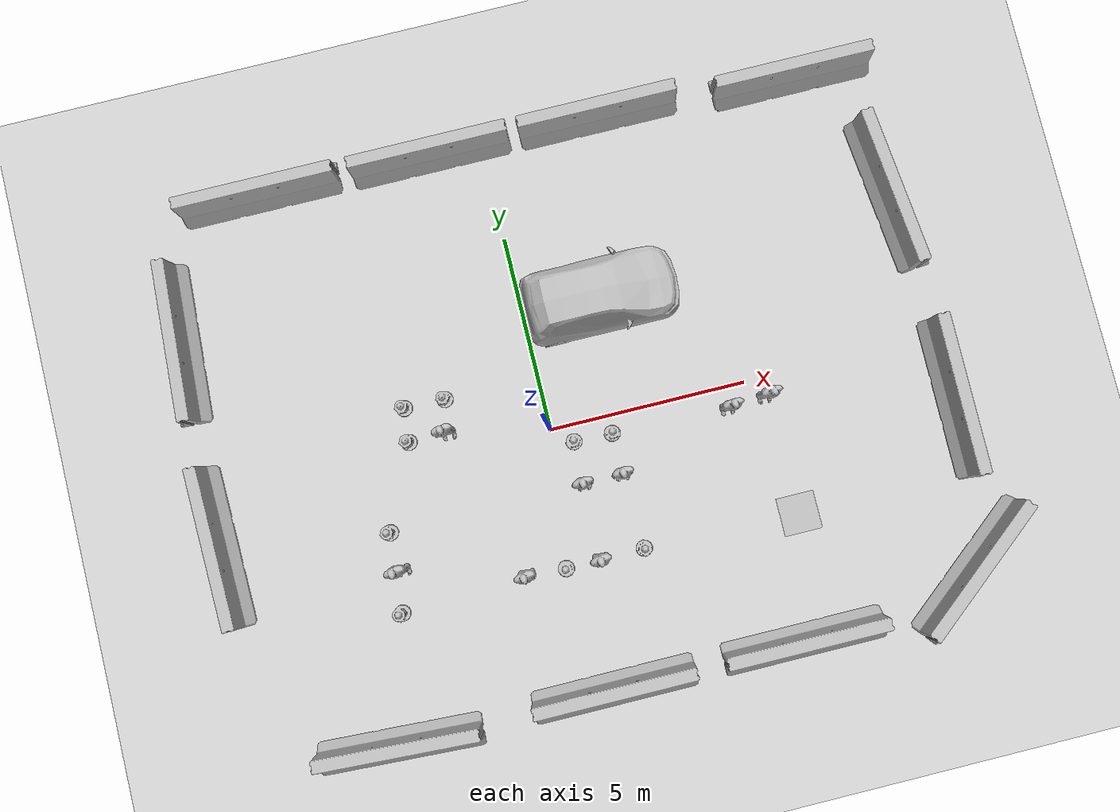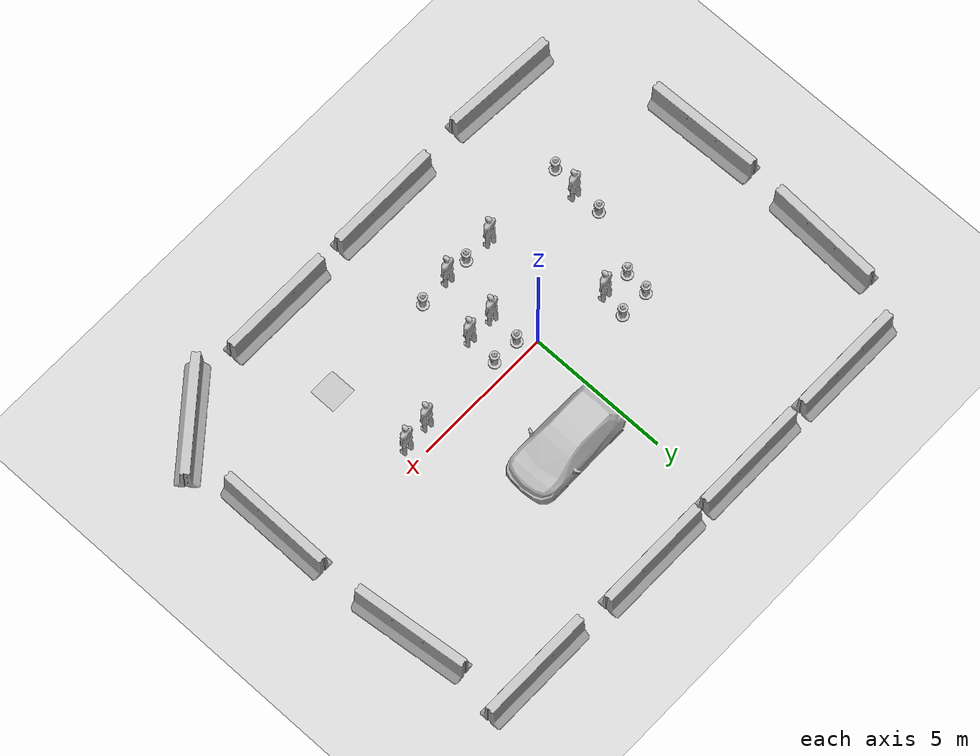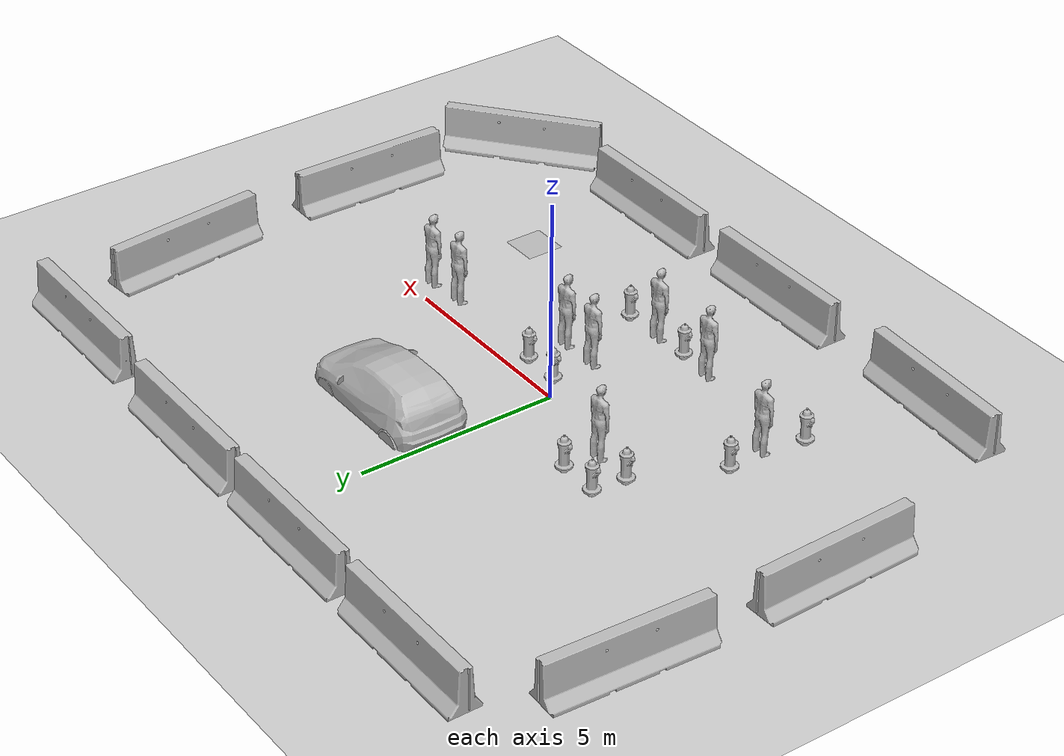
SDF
<sdf version="1.7">
 <world name="default">
  <light name="sun" type="directional">
   <pose>0 0 10 0 -0 0</pose>
   <diffuse>0.8 0.8 0.8 1</diffuse>
   <specular>0.2 0.2 0.2 1</specular>
   <attenuation>
    <range>1000</range>
    <constant>0.9</constant>
    <linear>0.01</linear>
    <quadratic>0.001</quadratic>
   </attenuation>
   <direction>-0.5 0.1 -0.9</direction>
   <spot><inner_angle>0</inner_angle><outer_angle>0</outer_angle><falloff>0</falloff></spot>
  </light>
  <model name="ground_plane">
   <static>1</static>
   <link name="link">
    <collision name="collision">
     <geometry><plane><normal>0 0 1</normal><size>100 100</size></plane></geometry>
     <surface>
      <contact><collide_bitmask>65535</collide_bitmask></contact>
      <friction><ode><mu>100</mu><mu2>50</mu2></ode></friction>
     </surface>
    </collision>
    <visual name="visual">
     <cast_shadows>0</cast_shadows>
     <geometry><plane><normal>0 0 1</normal><size>100 100</size></plane></geometry>
     <material>
      <script><uri>file://media/materials/scripts/gazebo.material</uri><name>Gazebo/Grey</name></script>
     </material>
    </visual>
   </link>
  </model>
  <gravity>0 0 -9.8</gravity>
  <magnetic_field>6e-06 2.3e-05 -4.2e-05</magnetic_field>
  <atmosphere type="adiabatic"/>
  <physics name="default_physics" default="0" type="ode">
   <max_step_size>0.001</max_step_size>
   <real_time_factor>1</real_time_factor>
   <real_time_update_rate>1000</real_time_update_rate>
  </physics>
  <scene><ambient>0.4 0.4 0.4 1</ambient><background>0.7 0.7 0.7 1</background><shadows>1</shadows></scene>
  <audio><device>default</device></audio>
  <spherical_coordinates>
   <surface_model>EARTH_WGS84</surface_model>
   <latitude_deg>0</latitude_deg>
   <longitude_deg>0</longitude_deg>
   <elevation>0</elevation>
   <heading_deg>0</heading_deg>
  </spherical_coordinates>
  <model name="checkerboard_plane">
   <static>1</static>
   <link name="link">
    <visual name="visual">
     <geometry>
      <mesh><scale>0.48 0.48 0.48</scale><uri>model://checkerboard_plane/meshes/checkerboard_plane.dae</uri></mesh>
     </geometry>
    </visual>
   </link>
   <pose>5.51191 -3.50404 0.005577 0 -0 0</pose>
  </model>
  <model name="jersey_barrier">
   <static>1</static>
   <link name="link">
    <visual name="visual">
     <geometry><mesh><uri>model://jersey_barrier/meshes/jersey_barrier.dae</uri></mesh></geometry>
    </visual>
    <collision name="upright">
     <pose>0 0 0.5715 0 -0 0</pose>
     <geometry><box><size>4.06542 0.3063 1.143</size></box></geometry>
    </collision>
    <collision name="base">
     <pose>0 0 0.032258 0 -0 0</pose>
     <geometry><box><size>4.06542 0.8107 0.064516</size></box></geometry>
    </collision>
    <collision name="base2">
     <pose>0 0 0.1 0 -0 0</pose>
     <geometry><box><size>4.06542 0.65 0.1</size></box></geometry>
    </collision>
    <collision name="base3">
     <pose>0 0 0.2 0 -0 0</pose>
     <geometry><box><size>4.06542 0.5 0.1</size></box></geometry>
    </collision>
    <collision name="left-angle">
     <pose>0 -0.224 0.2401 0.9 -0 0</pose>
     <geometry><box><size>4.06542 0.5 0.064516</size></box></geometry>
    </collision>
    <collision name="right-angle">
     <pose>0 0.224 0.2401 -0.9 0 0</pose>
     <geometry><box><size>4.06542 0.5 0.064516</size></box></geometry>
    </collision>
   </link>
   <pose>-5.72074 7.57191 0 0 -0 0</pose>
  </model>
  <model name="jersey_barrier_0">
   <static>1</static>
   <link name="link">
    <visual name="visual">
     <geometry><mesh><uri>model://jersey_barrier/meshes/jersey_barrier.dae</uri></mesh></geometry>
    </visual>
    <collision name="upright">
     <pose>0 0 0.5715 0 -0 0</pose>
     <geometry><box><size>4.06542 0.3063 1.143</size></box></geometry>
    </collision>
    <collision name="base">
     <pose>0 0 0.032258 0 -0 0</pose>
     <geometry><box><size>4.06542 0.8107 0.064516</size></box></geometry>
    </collision>
    <collision name="base2">
     <pose>0 0 0.1 0 -0 0</pose>
     <geometry><box><size>4.06542 0.65 0.1</size></box></geometry>
    </collision>
    <collision name="base3">
     <pose>0 0 0.2 0 -0 0</pose>
     <geometry><box><size>4.06542 0.5 0.1</size></box></geometry>
    </collision>
    <collision name="left-angle">
     <pose>0 -0.224 0.2401 0.9 -0 0</pose>
     <geometry><box><size>4.06542 0.5 0.064516</size></box></geometry>
    </collision>
    <collision name="right-angle">
     <pose>0 0.224 0.2401 -0.9 0 0</pose>
     <geometry><box><size>4.06542 0.5 0.064516</size></box></geometry>
    </collision>
   </link>
   <pose>-1.30679 7.54369 0 0 -0 0</pose>
  </model>
  <model name="jersey_barrier_1">
   <static>1</static>
   <link name="link">
    <visual name="visual">
     <geometry><mesh><uri>model://jersey_barrier/meshes/jersey_barrier.dae</uri></mesh></geometry>
    </visual>
    <collision name="upright">
     <pose>0 0 0.5715 0 -0 0</pose>
     <geometry><box><size>4.06542 0.3063 1.143</size></box></geometry>
    </collision>
    <collision name="base">
     <pose>0 0 0.032258 0 -0 0</pose>
     <geometry><box><size>4.06542 0.8107 0.064516</size></box></geometry>
    </collision>
    <collision name="base2">
     <pose>0 0 0.1 0 -0 0</pose>
     <geometry><box><size>4.06542 0.65 0.1</size></box></geometry>
    </collision>
    <collision name="base3">
     <pose>0 0 0.2 0 -0 0</pose>
     <geometry><box><size>4.06542 0.5 0.1</size></box></geometry>
    </collision>
    <collision name="left-angle">
     <pose>0 -0.224 0.2401 0.9 -0 0</pose>
     <geometry><box><size>4.06542 0.5 0.064516</size></box></geometry>
    </collision>
    <collision name="right-angle">
     <pose>0 0.224 0.2401 -0.9 0 0</pose>
     <geometry><box><size>4.06542 0.5 0.064516</size></box></geometry>
    </collision>
   </link>
   <pose>3.03202 7.53417 0 0 -0 0</pose>
  </model>
  <model name="jersey_barrier_2">
   <static>1</static>
   <link name="link">
    <visual name="visual">
     <geometry><mesh><uri>model://jersey_barrier/meshes/jersey_barrier.dae</uri></mesh></geometry>
    </visual>
    <collision name="upright">
     <pose>0 0 0.5715 0 -0 0</pose>
     <geometry><box><size>4.06542 0.3063 1.143</size></box></geometry>
    </collision>
    <collision name="base">
     <pose>0 0 0.032258 0 -0 0</pose>
     <geometry><box><size>4.06542 0.8107 0.064516</size></box></geometry>
    </collision>
    <collision name="base2">
     <pose>0 0 0.1 0 -0 0</pose>
     <geometry><box><size>4.06542 0.65 0.1</size></box></geometry>
    </collision>
    <collision name="base3">
     <pose>0 0 0.2 0 -0 0</pose>
     <geometry><box><size>4.06542 0.5 0.1</size></box></geometry>
    </collision>
    <collision name="left-angle">
     <pose>0 -0.224 0.2401 0.9 -0 0</pose>
     <geometry><box><size>4.06542 0.5 0.064516</size></box></geometry>
    </collision>
    <collision name="right-angle">
     <pose>0 0.224 0.2401 -0.9 0 0</pose>
     <geometry><box><size>4.06542 0.5 0.064516</size></box></geometry>
    </collision>
   </link>
   <pose>-5.34317 -6.59002 0 0 0 -0.053366</pose>
  </model>
  <model name="jersey_barrier_3">
   <static>1</static>
   <link name="link">
    <visual name="visual">
     <geometry><mesh><uri>model://jersey_barrier/meshes/jersey_barrier.dae</uri></mesh></geometry>
    </visual>
    <collision name="upright">
     <pose>0 0 0.5715 0 -0 0</pose>
     <geometry><box><size>4.06542 0.3063 1.143</size></box></geometry>
    </collision>
    <collision name="base">
     <pose>0 0 0.032258 0 -0 0</pose>
     <geometry><box><size>4.06542 0.8107 0.064516</size></box></geometry>
    </collision>
    <collision name="base2">
     <pose>0 0 0.1 0 -0 0</pose>
     <geometry><box><size>4.06542 0.65 0.1</size></box></geometry>
    </collision>
    <collision name="base3">
     <pose>0 0 0.2 0 -0 0</pose>
     <geometry><box><size>4.06542 0.5 0.1</size></box></geometry>
    </collision>
    <collision name="left-angle">
     <pose>0 -0.224 0.2401 0.9 -0 0</pose>
     <geometry><box><size>4.06542 0.5 0.064516</size></box></geometry>
    </collision>
    <collision name="right-angle">
     <pose>0 0.224 0.2401 -0.9 0 0</pose>
     <geometry><box><size>4.06542 0.5 0.064516</size></box></geometry>
    </collision>
   </link>
   <pose>0.017939 -6.55575 0 0 -0 0</pose>
  </model>
  <model name="jersey_barrier_4">
   <static>1</static>
   <link name="link">
    <visual name="visual">
     <geometry><mesh><uri>model://jersey_barrier/meshes/jersey_barrier.dae</uri></mesh></geometry>
    </visual>
    <collision name="upright">
     <pose>0 0 0.5715 0 -0 0</pose>
     <geometry><box><size>4.06542 0.3063 1.143</size></box></geometry>
    </collision>
    <collision name="base">
     <pose>0 0 0.032258 0 -0 0</pose>
     <geometry><box><size>4.06542 0.8107 0.064516</size></box></geometry>
    </collision>
    <collision name="base2">
     <pose>0 0 0.1 0 -0 0</pose>
     <geometry><box><size>4.06542 0.65 0.1</size></box></geometry>
    </collision>
    <collision name="base3">
     <pose>0 0 0.2 0 -0 0</pose>
     <geometry><box><size>4.06542 0.5 0.1</size></box></geometry>
    </collision>
    <collision name="left-angle">
     <pose>0 -0.224 0.2401 0.9 -0 0</pose>
     <geometry><box><size>4.06542 0.5 0.064516</size></box></geometry>
    </collision>
    <collision name="right-angle">
     <pose>0 0.224 0.2401 -0.9 0 0</pose>
     <geometry><box><size>4.06542 0.5 0.064516</size></box></geometry>
    </collision>
   </link>
   <pose>4.80899 -6.53465 0 0 -0 0</pose>
  </model>
  <model name="jersey_barrier_5">
   <static>1</static>
   <link name="link">
    <visual name="visual">
     <geometry><mesh><uri>model://jersey_barrier/meshes/jersey_barrier.dae</uri></mesh></geometry>
    </visual>
    <collision name="upright">
     <pose>0 0 0.5715 0 -0 0</pose>
     <geometry><box><size>4.06542 0.3063 1.143</size></box></geometry>
    </collision>
    <collision name="base">
     <pose>0 0 0.032258 0 -0 0</pose>
     <geometry><box><size>4.06542 0.8107 0.064516</size></box></geometry>
    </collision>
    <collision name="base2">
     <pose>0 0 0.1 0 -0 0</pose>
     <geometry><box><size>4.06542 0.65 0.1</size></box></geometry>
    </collision>
    <collision name="base3">
     <pose>0 0 0.2 0 -0 0</pose>
     <geometry><box><size>4.06542 0.5 0.1</size></box></geometry>
    </collision>
    <collision name="left-angle">
     <pose>0 -0.224 0.2401 0.9 -0 0</pose>
     <geometry><box><size>4.06542 0.5 0.064516</size></box></geometry>
    </collision>
    <collision name="right-angle">
     <pose>0 0.224 0.2401 -0.9 0 0</pose>
     <geometry><box><size>4.06542 0.5 0.064516</size></box></geometry>
    </collision>
   </link>
   <pose>-8.46202 4.27782 0 0 -0 1.51771</pose>
  </model>
  <model name="jersey_barrier_6">
   <static>1</static>
   <link name="link">
    <visual name="visual">
     <geometry><mesh><uri>model://jersey_barrier/meshes/jersey_barrier.dae</uri></mesh></geometry>
    </visual>
    <collision name="upright">
     <pose>0 0 0.5715 0 -0 0</pose>
     <geometry><box><size>4.06542 0.3063 1.143</size></box></geometry>
    </collision>
    <collision name="base">
     <pose>0 0 0.032258 0 -0 0</pose>
     <geometry><box><size>4.06542 0.8107 0.064516</size></box></geometry>
    </collision>
    <collision name="base2">
     <pose>0 0 0.1 0 -0 0</pose>
     <geometry><box><size>4.06542 0.65 0.1</size></box></geometry>
    </collision>
    <collision name="base3">
     <pose>0 0 0.2 0 -0 0</pose>
     <geometry><box><size>4.06542 0.5 0.1</size></box></geometry>
    </collision>
    <collision name="left-angle">
     <pose>0 -0.224 0.2401 0.9 -0 0</pose>
     <geometry><box><size>4.06542 0.5 0.064516</size></box></geometry>
    </collision>
    <collision name="right-angle">
     <pose>0 0.224 0.2401 -0.9 0 0</pose>
     <geometry><box><size>4.06542 0.5 0.064516</size></box></geometry>
    </collision>
   </link>
   <pose>-8.6215 -0.89399 0 0 0 -1.54764</pose>
  </model>
  <model name="jersey_barrier_7">
   <static>1</static>
   <link name="link">
    <visual name="visual">
     <geometry><mesh><uri>model://jersey_barrier/meshes/jersey_barrier.dae</uri></mesh></geometry>
    </visual>
    <collision name="upright">
     <pose>0 0 0.5715 0 -0 0</pose>
     <geometry><box><size>4.06542 0.3063 1.143</size></box></geometry>
    </collision>
    <collision name="base">
     <pose>0 0 0.032258 0 -0 0</pose>
     <geometry><box><size>4.06542 0.8107 0.064516</size></box></geometry>
    </collision>
    <collision name="base2">
     <pose>0 0 0.1 0 -0 0</pose>
     <geometry><box><size>4.06542 0.65 0.1</size></box></geometry>
    </collision>
    <collision name="base3">
     <pose>0 0 0.2 0 -0 0</pose>
     <geometry><box><size>4.06542 0.5 0.1</size></box></geometry>
    </collision>
    <collision name="left-angle">
     <pose>0 -0.224 0.2401 0.9 -0 0</pose>
     <geometry><box><size>4.06542 0.5 0.064516</size></box></geometry>
    </collision>
    <collision name="right-angle">
     <pose>0 0.224 0.2401 -0.9 0 0</pose>
     <geometry><box><size>4.06542 0.5 0.064516</size></box></geometry>
    </collision>
   </link>
   <pose>9.70575 3.77214 0 0 -0 1.6752</pose>
  </model>
  <model name="jersey_barrier_8">
   <static>1</static>
   <link name="link">
    <visual name="visual">
     <geometry><mesh><uri>model://jersey_barrier/meshes/jersey_barrier.dae</uri></mesh></geometry>
    </visual>
    <collision name="upright">
     <pose>0 0 0.5715 0 -0 0</pose>
     <geometry><box><size>4.06542 0.3063 1.143</size></box></geometry>
    </collision>
    <collision name="base">
     <pose>0 0 0.032258 0 -0 0</pose>
     <geometry><box><size>4.06542 0.8107 0.064516</size></box></geometry>
    </collision>
    <collision name="base2">
     <pose>0 0 0.1 0 -0 0</pose>
     <geometry><box><size>4.06542 0.65 0.1</size></box></geometry>
    </collision>
    <collision name="base3">
     <pose>0 0 0.2 0 -0 0</pose>
     <geometry><box><size>4.06542 0.5 0.1</size></box></geometry>
    </collision>
    <collision name="left-angle">
     <pose>0 -0.224 0.2401 0.9 -0 0</pose>
     <geometry><box><size>4.06542 0.5 0.064516</size></box></geometry>
    </collision>
    <collision name="right-angle">
     <pose>0 0.224 0.2401 -0.9 0 0</pose>
     <geometry><box><size>4.06542 0.5 0.064516</size></box></geometry>
    </collision>
   </link>
   <pose>9.97531 -1.62125 0 0 -0 1.56282</pose>
  </model>
  <model name="jersey_barrier_9">
   <static>1</static>
   <link name="link">
    <visual name="visual">
     <geometry><mesh><uri>model://jersey_barrier/meshes/jersey_barrier.dae</uri></mesh></geometry>
    </visual>
    <collision name="upright">
     <pose>0 0 0.5715 0 -0 0</pose>
     <geometry><box><size>4.06542 0.3063 1.143</size></box></geometry>
    </collision>
    <collision name="base">
     <pose>0 0 0.032258 0 -0 0</pose>
     <geometry><box><size>4.06542 0.8107 0.064516</size></box></geometry>
    </collision>
    <collision name="base2">
     <pose>0 0 0.1 0 -0 0</pose>
     <geometry><box><size>4.06542 0.65 0.1</size></box></geometry>
    </collision>
    <collision name="base3">
     <pose>0 0 0.2 0 -0 0</pose>
     <geometry><box><size>4.06542 0.5 0.1</size></box></geometry>
    </collision>
    <collision name="left-angle">
     <pose>0 -0.224 0.2401 0.9 -0 0</pose>
     <geometry><box><size>4.06542 0.5 0.064516</size></box></geometry>
    </collision>
    <collision name="right-angle">
     <pose>0 0.224 0.2401 -0.9 0 0</pose>
     <geometry><box><size>4.06542 0.5 0.064516</size></box></geometry>
    </collision>
   </link>
   <pose>9.28672 -5.8537 0 0 -0 0.686552</pose>
  </model>
  <model name="jersey_barrier_10">
   <static>1</static>
   <link name="link">
    <visual name="visual">
     <geometry><mesh><uri>model://jersey_barrier/meshes/jersey_barrier.dae</uri></mesh></geometry>
    </visual>
    <collision name="upright">
     <pose>0 0 0.5715 0 -0 0</pose>
     <geometry><box><size>4.06542 0.3063 1.143</size></box></geometry>
    </collision>
    <collision name="base">
     <pose>0 0 0.032258 0 -0 0</pose>
     <geometry><box><size>4.06542 0.8107 0.064516</size></box></geometry>
    </collision>
    <collision name="base2">
     <pose>0 0 0.1 0 -0 0</pose>
     <geometry><box><size>4.06542 0.65 0.1</size></box></geometry>
    </collision>
    <collision name="base3">
     <pose>0 0 0.2 0 -0 0</pose>
     <geometry><box><size>4.06542 0.5 0.1</size></box></geometry>
    </collision>
    <collision name="left-angle">
     <pose>0 -0.224 0.2401 0.9 -0 0</pose>
     <geometry><box><size>4.06542 0.5 0.064516</size></box></geometry>
    </collision>
    <collision name="right-angle">
     <pose>0 0.224 0.2401 -0.9 0 0</pose>
     <geometry><box><size>4.06542 0.5 0.064516</size></box></geometry>
    </collision>
   </link>
   <pose>8.05917 7.33314 0 0 -0 0</pose>
  </model>
  <model name="fire_hydrant">
   <static>1</static>
   <link name="link">
    <collision name="collision">
     <geometry><mesh><uri>model://fire_hydrant/meshes/fire_hydrant.dae</uri></mesh></geometry>
    </collision>
    <visual name="visual">
     <geometry><mesh><uri>model://fire_hydrant/meshes/fire_hydrant.dae</uri></mesh></geometry>
    </visual>
   </link>
   <pose>0.493211 -0.433039 0 0 -0 0</pose>
  </model>
  <model name="person_standing">
   <link name="link">
    <inertial>
     <pose>0 -0.1 0.95 0 -0 0</pose>
     <mass>80</mass>
     <inertia><ixx>24.88</ixx><ixy>0</ixy><ixz>0</ixz><iyy>25.73</iyy><iyz>0</iyz><izz>2.48</izz></inertia>
    </inertial>
    <collision name="bottom">
     <pose>0 -0.1 0.01 0 -0 0</pose>
     <geometry><box><size>0.5 0.35 0.02</size></box></geometry>
    </collision>
    <collision name="person">
     <pose>0 0 0.02 0.04 -0 0</pose>
     <geometry><mesh><uri>model://person_standing/meshes/standing.dae</uri></mesh></geometry>
    </collision>
    <visual name="visual">
     <pose>0 0 0.02 0.04 -0 0</pose>
     <geometry><mesh><uri>model://person_standing/meshes/standing.dae</uri></mesh></geometry>
    </visual>
   </link>
   <pose>-4.36211 -2.40914 -0 1e-06 -1e-06 0.000272</pose>
  </model>
  <model name="person_standing_0">
   <link name="link">
    <inertial>
     <pose>0 -0.1 0.95 0 -0 0</pose>
     <mass>80</mass>
     <inertia><ixx>24.88</ixx><ixy>0</ixy><ixz>0</ixz><iyy>25.73</iyy><iyz>0</iyz><izz>2.48</izz></inertia>
    </inertial>
    <collision name="bottom">
     <pose>0 -0.1 0.01 0 -0 0</pose>
     <geometry><box><size>0.5 0.35 0.02</size></box></geometry>
    </collision>
    <collision name="person">
     <pose>0 0 0.02 0.04 -0 0</pose>
     <geometry><mesh><uri>model://person_standing/meshes/standing.dae</uri></mesh></geometry>
    </collision>
    <visual name="visual">
     <pose>0 0 0.02 0.04 -0 0</pose>
     <geometry><mesh><uri>model://person_standing/meshes/standing.dae</uri></mesh></geometry>
    </visual>
   </link>
   <pose>0.472677 -1.42893 -1e-06 -1e-06 1e-06 -0.000524</pose>
  </model>
  <model name="fire_hydrant_0">
   <static>1</static>
   <link name="link">
    <collision name="collision">
     <geometry><mesh><uri>model://fire_hydrant/meshes/fire_hydrant.dae</uri></mesh></geometry>
    </collision>
    <visual name="visual">
     <geometry><mesh><uri>model://fire_hydrant/meshes/fire_hydrant.dae</uri></mesh></geometry>
    </visual>
   </link>
   <pose>-4.60835 -3.52411 0 0 -0 0</pose>
  </model>
  <model name="person_standing_1">
   <link name="link">
    <inertial>
     <pose>0 -0.1 0.95 0 -0 0</pose>
     <mass>80</mass>
     <inertia><ixx>24.88</ixx><ixy>0</ixy><ixz>0</ixz><iyy>25.73</iyy><iyz>0</iyz><izz>2.48</izz></inertia>
    </inertial>
    <collision name="bottom">
     <pose>0 -0.1 0.01 0 -0 0</pose>
     <geometry><box><size>0.5 0.35 0.02</size></box></geometry>
    </collision>
    <collision name="person">
     <pose>0 0 0.02 0.04 -0 0</pose>
     <geometry><mesh><uri>model://person_standing/meshes/standing.dae</uri></mesh></geometry>
    </collision>
    <visual name="visual">
     <pose>0 0 0.02 0.04 -0 0</pose>
     <geometry><mesh><uri>model://person_standing/meshes/standing.dae</uri></mesh></geometry>
    </visual>
   </link>
   <pose>0.454492 -3.30938 -0 1e-06 -1e-06 -0.001719</pose>
  </model>
  <model name="fire_hydrant_1">
   <static>1</static>
   <link name="link">
    <collision name="collision">
     <geometry><mesh><uri>model://fire_hydrant/meshes/fire_hydrant.dae</uri></mesh></geometry>
    </collision>
    <visual name="visual">
     <geometry><mesh><uri>model://fire_hydrant/meshes/fire_hydrant.dae</uri></mesh></geometry>
    </visual>
   </link>
   <pose>-4.45741 -1.53366 0 0 -0 0</pose>
  </model>
  <model name="fire_hydrant_2">
   <static>1</static>
   <link name="link">
    <collision name="collision">
     <geometry><mesh><uri>model://fire_hydrant/meshes/fire_hydrant.dae</uri></mesh></geometry>
    </collision>
    <visual name="visual">
     <geometry><mesh><uri>model://fire_hydrant/meshes/fire_hydrant.dae</uri></mesh></geometry>
    </visual>
   </link>
   <pose>-0.436536 -3.43369 0 0 -0 0</pose>
  </model>
  <model name="person_standing_2">
   <link name="link">
    <inertial>
     <pose>0 -0.1 0.95 0 -0 0</pose>
     <mass>80</mass>
     <inertia><ixx>24.88</ixx><ixy>0</ixy><ixz>0</ixz><iyy>25.73</iyy><iyz>0</iyz><izz>2.48</izz></inertia>
    </inertial>
    <collision name="bottom">
     <pose>0 -0.1 0.01 0 -0 0</pose>
     <geometry><box><size>0.5 0.35 0.02</size></box></geometry>
    </collision>
    <collision name="person">
     <pose>0 0 0.02 0.04 -0 0</pose>
     <geometry><mesh><uri>model://person_standing/meshes/standing.dae</uri></mesh></geometry>
    </collision>
    <visual name="visual">
     <pose>0 0 0.02 0.04 -0 0</pose>
     <geometry><mesh><uri>model://person_standing/meshes/standing.dae</uri></mesh></geometry>
    </visual>
   </link>
   <pose>-1.39912 -3.26234 -0 1e-06 1e-06 -0.000515</pose>
  </model>
  <model name="fire_hydrant_3">
   <static>1</static>
   <link name="link">
    <collision name="collision">
     <geometry><mesh><uri>model://fire_hydrant/meshes/fire_hydrant.dae</uri></mesh></geometry>
    </collision>
    <visual name="visual">
     <geometry><mesh><uri>model://fire_hydrant/meshes/fire_hydrant.dae</uri></mesh></geometry>
    </visual>
   </link>
   <pose>1.55371 -3.41043 0 0 -0 0</pose>
  </model>
  <model name="person_standing_3">
   <link name="link">
    <inertial>
     <pose>0 -0.1 0.95 0 -0 0</pose>
     <mass>80</mass>
     <inertia><ixx>24.88</ixx><ixy>0</ixy><ixz>0</ixz><iyy>25.73</iyy><iyz>0</iyz><izz>2.48</izz></inertia>
    </inertial>
    <collision name="bottom">
     <pose>0 -0.1 0.01 0 -0 0</pose>
     <geometry><box><size>0.5 0.35 0.02</size></box></geometry>
    </collision>
    <collision name="person">
     <pose>0 0 0.02 0.04 -0 0</pose>
     <geometry><mesh><uri>model://person_standing/meshes/standing.dae</uri></mesh></geometry>
    </collision>
    <visual name="visual">
     <pose>0 0 0.02 0.04 -0 0</pose>
     <geometry><mesh><uri>model://person_standing/meshes/standing.dae</uri></mesh></geometry>
    </visual>
   </link>
   <pose>1.45912 -1.42499 -1e-06 -1e-06 2e-06 -0.000346</pose>
  </model>
  <model name="fire_hydrant_4">
   <static>1</static>
   <link name="link">
    <collision name="collision">
     <geometry><mesh><uri>model://fire_hydrant/meshes/fire_hydrant.dae</uri></mesh></geometry>
    </collision>
    <visual name="visual">
     <geometry><mesh><uri>model://fire_hydrant/meshes/fire_hydrant.dae</uri></mesh></geometry>
    </visual>
   </link>
   <pose>1.4687 -0.457056 0 0 -0 0</pose>
  </model>
  <model name="fire_hydrant_clone">
   <static>1</static>
   <link name="link">
    <collision name="collision">
     <geometry><mesh><uri>model://fire_hydrant/meshes/fire_hydrant.dae</uri></mesh></geometry>
    </collision>
    <visual name="visual">
     <geometry><mesh><uri>model://fire_hydrant/meshes/fire_hydrant.dae</uri></mesh></geometry>
    </visual>
   </link>
   <pose>-2.38556 1.36542 0 0 -0 0</pose>
  </model>
  <model name="fire_hydrant_clone_0">
   <static>1</static>
   <link name="link">
    <collision name="collision">
     <geometry><mesh><uri>model://fire_hydrant/meshes/fire_hydrant.dae</uri></mesh></geometry>
    </collision>
    <visual name="visual">
     <geometry><mesh><uri>model://fire_hydrant/meshes/fire_hydrant.dae</uri></mesh></geometry>
    </visual>
   </link>
   <pose>-3.42352 1.38902 0 0 -0 0</pose>
  </model>
  <model name="person_standing_0_clone">
   <link name="link">
    <inertial>
     <pose>0 -0.1 0.95 0 -0 0</pose>
     <mass>80</mass>
     <inertia><ixx>24.88</ixx><ixy>0</ixy><ixz>0</ixz><iyy>25.73</iyy><iyz>0</iyz><izz>2.48</izz></inertia>
    </inertial>
    <collision name="bottom">
     <pose>0 -0.1 0.01 0 -0 0</pose>
     <geometry><box><size>0.5 0.35 0.02</size></box></geometry>
    </collision>
    <collision name="person">
     <pose>0 0 0.02 0.04 -0 0</pose>
     <geometry><mesh><uri>model://person_standing/meshes/standing.dae</uri></mesh></geometry>
    </collision>
    <visual name="visual">
     <pose>0 0 0.02 0.04 -0 0</pose>
     <geometry><mesh><uri>model://person_standing/meshes/standing.dae</uri></mesh></geometry>
    </visual>
   </link>
   <pose>-2.50662 0.597367 -1e-06 -1e-06 -1e-06 0.000802</pose>
  </model>
  <model name="fire_hydrant_clone_0_clone">
   <static>1</static>
   <link name="link">
    <collision name="collision">
     <geometry><mesh><uri>model://fire_hydrant/meshes/fire_hydrant.dae</uri></mesh></geometry>
    </collision>
    <visual name="visual">
     <geometry><mesh><uri>model://fire_hydrant/meshes/fire_hydrant.dae</uri></mesh></geometry>
    </visual>
   </link>
   <pose>-3.50377 0.536615 0 0 -0 0</pose>
  </model>
  <model name="person_standing_3_clone">
   <link name="link">
    <inertial>
     <pose>0 -0.1 0.95 0 -0 0</pose>
     <mass>80</mass>
     <inertia><ixx>24.88</ixx><ixy>0</ixy><ixz>0</ixz><iyy>25.73</iyy><iyz>0</iyz><izz>2.48</izz></inertia>
    </inertial>
    <collision name="bottom">
     <pose>0 -0.1 0.01 0 -0 0</pose>
     <geometry><box><size>0.5 0.35 0.02</size></box></geometry>
    </collision>
    <collision name="person">
     <pose>0 0 0.02 0.04 -0 0</pose>
     <geometry><mesh><uri>model://person_standing/meshes/standing.dae</uri></mesh></geometry>
    </collision>
    <visual name="visual">
     <pose>0 0 0.02 0.04 -0 0</pose>
     <geometry><mesh><uri>model://person_standing/meshes/standing.dae</uri></mesh></geometry>
    </visual>
   </link>
   <pose>4.41554 -0.469522 -1e-06 -1e-06 1e-06 0.000384</pose>
  </model>
  <model name="person_standing_3_clone_0">
   <link name="link">
    <inertial>
     <pose>0 -0.1 0.95 0 -0 0</pose>
     <mass>80</mass>
     <inertia><ixx>24.88</ixx><ixy>0</ixy><ixz>0</ixz><iyy>25.73</iyy><iyz>0</iyz><izz>2.48</izz></inertia>
    </inertial>
    <collision name="bottom">
     <pose>0 -0.1 0.01 0 -0 0</pose>
     <geometry><box><size>0.5 0.35 0.02</size></box></geometry>
    </collision>
    <collision name="person">
     <pose>0 0 0.02 0.04 -0 0</pose>
     <geometry><mesh><uri>model://person_standing/meshes/standing.dae</uri></mesh></geometry>
    </collision>
    <visual name="visual">
     <pose>0 0 0.02 0.04 -0 0</pose>
     <geometry><mesh><uri>model://person_standing/meshes/standing.dae</uri></mesh></geometry>
    </visual>
   </link>
   <pose>5.3899 -0.398289 -1e-06 -1e-06 1e-06 0.000551</pose>
  </model>
  <model name="hatchback">
   <static>1</static>
   <link name="link">
    <collision name="collision">
     <pose>0 0 0 0 -0 1.5708</pose>
     <geometry>
      <mesh><scale>0.0254 0.0254 0.0254</scale><uri>model://hatchback/meshes/hatchback.obj</uri></mesh>
     </geometry>
    </collision>
    <visual name="visual">
     <pose>0 0 0 0 -0 1.5708</pose>
     <geometry>
      <mesh><scale>0.0254 0.0254 0.0254</scale><uri>model://hatchback/meshes/hatchback.obj</uri></mesh>
     </geometry>
    </visual>
   </link>
   <pose>1.65047 2.99042 -0.381353 0 -0 0</pose>
  </model>
 </world>
</sdf>
